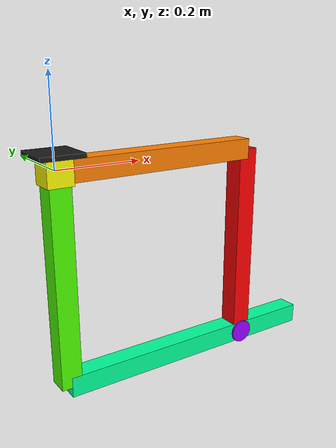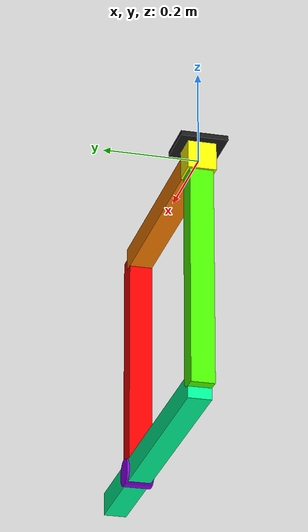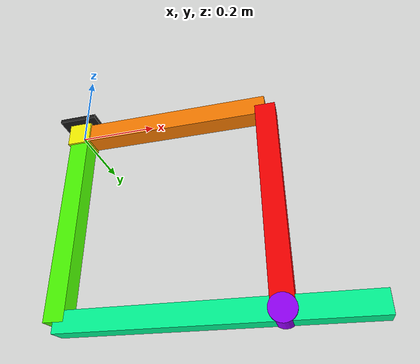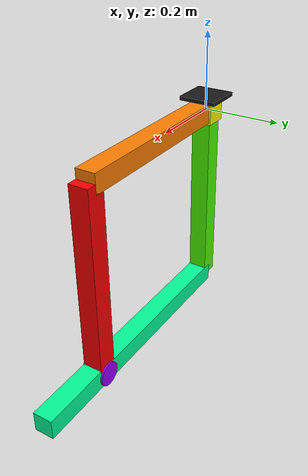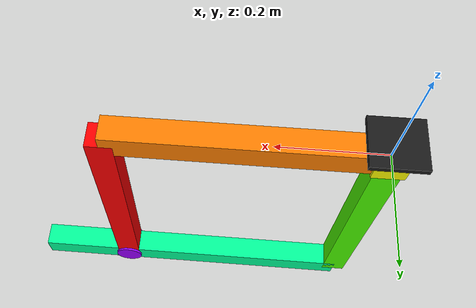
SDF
<sdf version='1.9'>
  <model name='closed_loop_demo'>

    <!-- Define Links -->

    <link name='base_link'>
      <pose>0 0 0 0 0 0</pose>
      <inertial>
        <pose>0 0 0.035 0 0 0</pose>
        <mass>10</mass>
        <inertia>
          <ixx>0.008416667</ixx>
          <ixy>0</ixy>
          <ixz>0</ixz>
          <iyy>0.008416667</iyy>
          <iyz>0</iyz>
          <izz>0.016666667</izz>
        </inertia>
      </inertial>
      <visual name='base_link_visual'>
        <pose>0 0 0.035 0 0 0</pose>
        <geometry>
          <box>
            <size>0.1 0.1 0.01</size>
          </box>
        </geometry>
        <material>
          <diffuse>0.1 0.1 0.1 1</diffuse>
        </material>
      </visual>
    </link>
    <link name='link_0'>
      <pose>0 0 0 0 0 0</pose>
      <inertial>
        <mass>1</mass>
        <inertia>
          <ixx>0.0006</ixx>
          <ixy>0</ixy>
          <ixz>0</ixz>
          <iyy>0.0006</iyy>
          <iyz>0</iyz>
          <izz>0.0006</izz>
        </inertia>
      </inertial>
      <visual name='base_link_visual'>
        <pose>0 0 0 0 0 0</pose>
        <geometry>
          <box>
            <size>0.06 0.06 0.06</size>
          </box>
        </geometry>
        <material>
          <diffuse>1 0.99 0 1</diffuse>
        </material>
      </visual>
    </link>
    <link name='link_1'>
      <pose>0.25 0 0 0 0 0</pose>
      <inertial>
        <mass>1</mass>
        <inertia>
          <ixx>0.000416667</ixx>
          <ixy>0</ixy>
          <ixz>0</ixz>
          <iyy>0.021041667</iyy>
          <iyz>0</iyz>
          <izz>0.021041667</izz>
        </inertia>
      </inertial>
      <visual name='link_1_visual'>
        <pose>0 0 0 0 0 0</pose>
        <geometry>
          <box>
            <size>0.5 0.05 0.05</size>
          </box>
        </geometry>
        <material>
          <diffuse>1 0.5 0 1</diffuse>
        </material>
      </visual>
    </link>
    <link name='link_2'>
      <inertial>
        <mass>1</mass>
        <inertia>
          <ixx>0.021041667</ixx>
          <ixy>0</ixy>
          <ixz>0</ixz>
          <iyy>0.021041667</iyy>
          <iyz>0</iyz>
          <izz>0.000416667</izz>
        </inertia>
      </inertial>
      <pose>0.5 0 -0.25 0 0 0</pose>
      <visual name='link_2_visual'>
        <pose>0 0 0 0 0 0</pose>
        <geometry>
          <box>
            <size>0.05 0.05 0.5</size>
          </box>
        </geometry>
        <material>
          <diffuse>1 0 0 1</diffuse>
        </material>
      </visual>
    </link>

    <link name='link_3'>
      <inertial>
        <mass>1</mass>
        <inertia>
          <ixx>0.021041667</ixx>
          <ixy>0</ixy>
          <ixz>0</ixz>
          <iyy>0.021041667</iyy>
          <iyz>0</iyz>
          <izz>0.000416667</izz>
        </inertia>
      </inertial>
      <pose>0 0 -0.25 0 0 0</pose>
      <visual name='link_3_visual'>
        <pose>0 0 0 0 0 0</pose>
        <geometry>
          <box>
            <size>0.05 0.05 0.5</size>
          </box>
        </geometry>
        <material>
          <diffuse>0.3 1 0 1</diffuse>
        </material>
      </visual>
    </link>
    <link name='link_4'>
      <inertial>
        <mass>1</mass>
        <inertia>
          <ixx>0.000416667</ixx>
          <ixy>0</ixy>
          <ixz>0</ixz>
          <iyy>0.021041667</iyy>
          <iyz>0</iyz>
          <izz>0.021041667</izz>
        </inertia>
      </inertial>
      <pose>0.25 0 -0.5 0 0 0</pose>
      <visual name='link_4_visual'>
        <pose>0 0 0 0 0 0</pose>
        <geometry>
          <box>
            <size>0.5 0.05 0.05</size>
          </box>
        </geometry>
        <material>
          <diffuse>0 1 0.6 1</diffuse>
        </material>
      </visual>
      <visual name='link_4_visual2'>
        <pose>0.35 0 0 0 0 0</pose>
        <geometry>
          <box>
            <size>0.2 0.05 0.05</size>
          </box>
        </geometry>
        <material>
          <diffuse>0 1 0.6 1</diffuse>
        </material>
      </visual>
    </link>

    <!-- Define Joints -->

    <joint name='joint_D0' type='fixed'>
      <child>link_0</child>
      <parent>base_link</parent>
      <pose>0 0 0 0 0 0</pose>
      <axis>
        <xyz>0 0 1</xyz>
        <limit>
          <lower>-2</lower>
          <upper>2</upper>
        </limit>
      </axis>
    </joint>
    <joint name='joint_A0' type='revolute'>
      <child>link_1</child>
      <parent>link_0</parent>
      <pose>-0.25 0 0 0 0 0</pose>
      <axis>
        <xyz>0 1 0</xyz>
        <limit>
          <lower>-3</lower>
          <upper>3</upper>
        </limit>
      </axis>
    </joint>
    <joint name='joint_A' type='revolute'>
      <child>link_2</child>
      <parent>link_1</parent>
      <pose>0 0 0.25 0 0 0</pose>
      <axis>
        <xyz>0 1 0</xyz>
        <limit>
          <lower>-3</lower>
          <upper>3</upper>
        </limit>
      </axis>
    </joint>

    <joint name='joint_B0' type='revolute'>
      <child>link_3</child>
      <parent>link_0</parent>
      <pose>0 0 0.25 0 0 0</pose>
      <axis>
        <xyz>0 1 0</xyz>
        <limit>
          <lower>-3</lower>
          <upper>3</upper>
        </limit>
      </axis>
    </joint>
    <joint name='joint_B' type='revolute'>
      <child>link_4</child>
      <parent>link_3</parent>
      <pose>-0.25 0 0 0 0 0</pose>
      <axis>
        <xyz>0 1 0</xyz>
        <limit>
          <lower>-3</lower>
          <upper>3</upper>
        </limit>
      </axis>
    </joint>

    <!-- create rotatable dummy link at Joint C position on link_4 -->
    <link name='dummy_link'>
      <pose>0.5 0 -0.5 0 0 0</pose>
      <inertial>
        <pose>0 0 0 1.57079633 0 0</pose>
        <mass>0.1</mass>
        <inertia>
          <ixx>5.25e-5</ixx>
          <ixy>0</ixy>
          <ixz>0</ixz>
          <iyy>5.25e-5</iyy>
          <iyz>0</iyz>
          <izz>4.50e-5</izz>
        </inertia>
      </inertial>
      <visual name='dummy_visual'>
        <pose>0 0 0 1.57079633 0 0</pose>
        <geometry>
          <cylinder>
            <radius>0.03</radius>
            <length>0.06</length>
          </cylinder>
        </geometry>
        <material>
          <diffuse>0.6 0 1 1</diffuse>
        </material>
      </visual>
    </link>
    <joint name='joint_C' type='revolute'> <!-- Connect dummy_link to link_4 -->
      <child>dummy_link</child>
      <parent>link_4</parent>
      <pose>0 0 0 0 0 0</pose>
      <axis>
        <xyz>0 1 0</xyz>
        <limit>
          <lower>-3</lower>
          <upper>3</upper>
        </limit>
      </axis>
    </joint>

    <!-- Create joint to World -->

    <joint name="fix_base_to_world" type="fixed">
      <parent>world</parent>
      <child>base_link</child>
    </joint>

    <!-- Plugin to close the loop -->

    <plugin filename="libgz-sim-detachable-joint-system.so" name="gz::sim::systems::DetachableJoint"> <!-- Connect link_2 to link_4 (via dummy_link) -->
      <parent_link>link_2</parent_link>
      <child_model>closed_loop_demo_model</child_model>
      <child_link>dummy_link</child_link>

      <attach_topic>loop/attach</attach_topic>
      <detach_topic>loop/detach</detach_topic>
      <output_topic>loop/state</output_topic>
    </plugin>

  </model>
</sdf>
